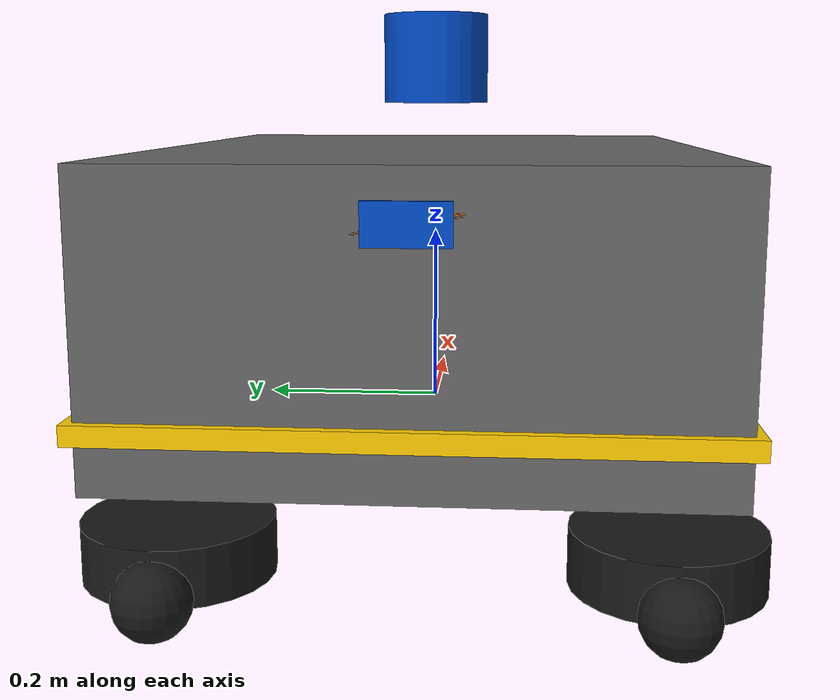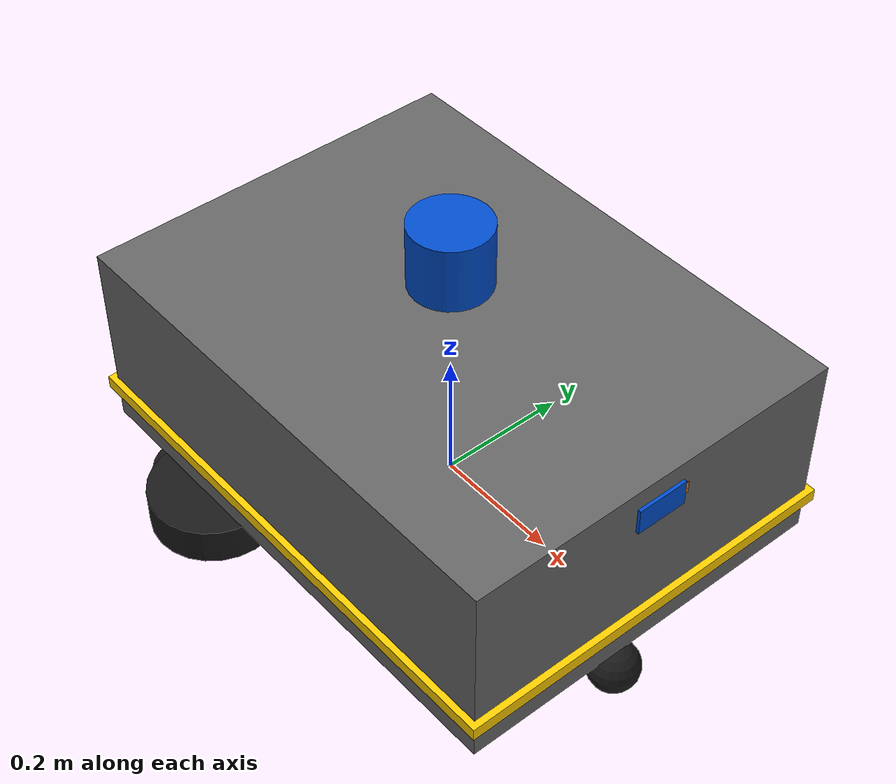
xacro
<?xml version="1.0"?>
<!--
  AGV Differential Drive Model - URDF/Xacro
  Dimensions: 800 x 600 x 300 mm
  Max Speed: 1.5 m/s
  Payload: 500 kg
-->
<robot name="agv" xmlns:xacro="http://www.ros.org/wiki/xacro">

  <!-- Material definitions                         -->
  <material name="agv_body_grey">
    <color rgba="0.4 0.4 0.4 1.0"/>
  </material>
  <material name="agv_accent_orange">
    <color rgba="1.0 0.5 0.0 1.0"/>
  </material>
  <material name="wheel_black">
    <color rgba="0.1 0.1 0.1 1.0"/>
  </material>
  <material name="sensor_blue">
    <color rgba="0.0 0.3 0.8 1.0"/>
  </material>
  <material name="safety_yellow">
    <color rgba="1.0 0.8 0.0 1.0"/>
  </material>

  <!-- Macros                                       -->

  <!-- Drive wheel macro -->
  <xacro:macro name="drive_wheel" params="name prefix x_reflect">
    <joint name="${name}_joint" type="continuous">
      <origin xyz="${x_reflect * 0.25} ${0.25 * (1 if prefix == 'right' else -1)} -0.1" rpy="0 0 0"/>
      <parent link="base_link"/>
      <child link="${name}_link"/>
      <axis xyz="0 1 0"/>
    </joint>
    <link name="${name}_link">
      <inertial>
        <origin xyz="0 0 0" rpy="0 0 0"/>
        <mass value="2.0"/>
        <inertia ixx="0.01" ixy="0.0" ixz="0.0" iyy="0.01" iyz="0.0" izz="0.01"/>
      </inertial>
      <visual>
        <origin xyz="0 0 0" rpy="0 0 0"/>
        <geometry>
          <cylinder radius="0.1" length="0.06"/>
        </geometry>
        <material name="wheel_black"/>
      </visual>
      <collision>
        <origin xyz="0 0 0" rpy="0 0 0"/>
        <geometry>
          <cylinder radius="0.1" length="0.06"/>
        </geometry>
      </collision>
    </link>
  </xacro:macro>

  <!-- Caster wheel macro -->
  <xacro:macro name="caster_wheel" params="name x y">
    <joint name="${name}_joint" type="fixed">
      <origin xyz="${x} ${y} -0.12" rpy="0 0 0"/>
      <parent link="base_link"/>
      <child link="${name}_link"/>
    </joint>
    <link name="${name}_link">
      <inertial>
        <mass value="0.5"/>
        <inertia ixx="0.001" ixy="0" ixz="0" iyy="0.001" iyz="0" izz="0.001"/>
      </inertial>
      <visual>
        <geometry>
          <sphere radius="0.04"/>
        </geometry>
        <material name="wheel_black"/>
      </visual>
      <collision>
        <geometry>
          <sphere radius="0.04"/>
        </geometry>
      </collision>
    </link>
  </xacro:macro>

  <!-- Base link (chassis)                          -->
  <link name="base_link">
    <inertial>
      <origin xyz="0 0 0" rpy="0 0 0"/>
      <mass value="80.0"/>
      <inertia
        ixx="${80.0 * (0.6*0.6 + 0.3*0.3) / 12}"
        ixy="0.0" ixz="0.0"
        iyy="${80.0 * (0.8*0.8 + 0.3*0.3) / 12}"
        iyz="0.0"
        izz="${80.0 * (0.8*0.8 + 0.6*0.6) / 12}"/>
    </inertial>
    <visual>
      <origin xyz="0 0 0.15" rpy="0 0 0"/>
      <geometry>
        <box size="0.8 0.6 0.3"/>
      </geometry>
      <material name="agv_body_grey"/>
    </visual>
    <visual>
      <!-- Orange accent stripe -->
      <origin xyz="0 0 0.25" rpy="0 0 0"/>
      <geometry>
        <box size="0.8 0.1 0.02"/>
      </geometry>
      <material name="agv_accent_orange"/>
    </visual>
    <collision>
      <origin xyz="0 0 0.15" rpy="0 0 0"/>
      <geometry>
        <box size="0.8 0.6 0.3"/>
      </geometry>
    </collision>
  </link>

  <!-- Drive wheels                                 -->
  <xacro:drive_wheel name="left_wheel" prefix="left" x_reflect="-1"/>
  <xacro:drive_wheel name="right_wheel" prefix="right" x_reflect="-1"/>

  <!-- Caster wheels (support)                      -->
  <xacro:caster_wheel name="front_caster" x="0.35" y="0"/>
  <xacro:caster_wheel name="rear_left_caster" x="-0.35" y="-0.25"/>
  <xacro:caster_wheel name="rear_right_caster" x="-0.35" y="0.25"/>

  <!-- Sensors                                      -->

  <!-- 3D LiDAR (top mounted) -->
  <link name="lidar_link">
    <inertial>
      <mass value="1.5"/>
      <inertia ixx="0.005" ixy="0" ixz="0" iyy="0.005" iyz="0" izz="0.005"/>
    </inertial>
    <visual>
      <origin xyz="0 0 0.05" rpy="0 0 0"/>
      <geometry>
        <cylinder radius="0.06" length="0.1"/>
      </geometry>
      <material name="sensor_blue"/>
    </visual>
    <collision>
      <origin xyz="0 0 0.05" rpy="0 0 0"/>
      <geometry>
        <cylinder radius="0.06" length="0.1"/>
      </geometry>
    </collision>
  </link>
  <joint name="lidar_joint" type="fixed">
    <origin xyz="0 0 0.35" rpy="0 0 0"/>
    <parent link="base_link"/>
    <child link="lidar_link"/>
  </joint>

  <!-- Front RGB-D camera -->
  <link name="camera_front_link">
    <inertial>
      <mass value="0.3"/>
      <inertia ixx="0.0005" ixy="0" ixz="0" iyy="0.0005" iyz="0" izz="0.0005"/>
    </inertial>
    <visual>
      <geometry>
        <box size="0.05 0.08 0.04"/>
      </geometry>
      <material name="sensor_blue"/>
    </visual>
  </link>
  <joint name="camera_front_joint" type="fixed">
    <origin xyz="0.38 0 0.25" rpy="0 0 0"/>
    <parent link="base_link"/>
    <child link="camera_front_link"/>
  </joint>

  <!-- Rear RGB-D camera -->
  <link name="camera_rear_link">
    <inertial>
      <mass value="0.3"/>
      <inertia ixx="0.0005" ixy="0" ixz="0" iyy="0.0005" iyz="0" izz="0.0005"/>
    </inertial>
    <visual>
      <geometry>
        <box size="0.05 0.08 0.04"/>
      </geometry>
      <material name="sensor_blue"/>
    </visual>
  </link>
  <joint name="camera_rear_joint" type="fixed">
    <origin xyz="-0.38 0 0.25" rpy="0 3.14159 0"/>
    <parent link="base_link"/>
    <child link="camera_rear_link"/>
  </joint>

  <!-- IMU (center, inside chassis) -->
  <link name="imu_link">
    <inertial>
      <mass value="0.05"/>
      <inertia ixx="0.00001" ixy="0" ixz="0" iyy="0.00001" iyz="0" izz="0.00001"/>
    </inertial>
  </link>
  <joint name="imu_joint" type="fixed">
    <origin xyz="0 0 0.2" rpy="0 0 0"/>
    <parent link="base_link"/>
    <child link="imu_link"/>
  </joint>

  <!-- Safety edge visual (yellow stripe around base) -->
  <link name="safety_edge_link">
    <visual>
      <origin xyz="0 0 0.05" rpy="0 0 0"/>
      <geometry>
        <box size="0.82 0.62 0.02"/>
      </geometry>
      <material name="safety_yellow"/>
    </visual>
  </link>
  <joint name="safety_edge_joint" type="fixed">
    <origin xyz="0 0 0.01" rpy="0 0 0"/>
    <parent link="base_link"/>
    <child link="safety_edge_link"/>
  </joint>

  <!-- Gazebo extensions                            -->
  <gazebo>
    <plugin name="gazebo_ros_diff_drive" filename="libgazebo_ros_diff_drive.so">
      <!-- Wheel configuration -->
      <left_joint>left_wheel_joint</left_joint>
      <right_joint>right_wheel_joint</right_joint>
      <wheel_separation>0.5</wheel_separation>
      <wheel_diameter>0.2</wheel_diameter>
      <max_wheel_torque>20.0</max_wheel_torque>
      <max_wheel_acceleration>5.0</max_wheel_acceleration>

      <!-- Odometry -->
      <odometry_frame>odom</odometry_frame>
      <robot_base_frame>base_link</robot_base_frame>
      <publish_odom>true</publish_odom>
      <publish_odom_tf>true</publish_odom_tf>
      <publish_wheel_tf>false</publish_wheel_tf>

      <!-- Topic configuration -->
      <ros>
        <namespace>/agv_01</namespace>
        <remapping>cmd_vel:=cmd_vel</remapping>
        <remapping>odom:=odom</remapping>
      </ros>

      <!-- Update rate -->
      <update_rate>100</update_rate>
    </plugin>
  </gazebo>

  <!-- LiDAR sensor plugin -->
  <gazebo reference="lidar_link">
    <sensor name="lidar_sensor" type="ray">
      <pose>0 0 0.05 0 0 0</pose>
      <visualize>false</visualize>
      <update_rate>30</update_rate>
      <ray>
        <scan>
          <horizontal>
            <samples>360</samples>
            <resolution>1</resolution>
            <min_angle>-3.14159</min_angle>
            <max_angle>3.14159</max_angle>
          </horizontal>
          <vertical>
            <samples>16</samples>
            <resolution>1</resolution>
            <min_angle>-0.2618</min_angle>
            <max_angle>0.2618</max_angle>
          </vertical>
        </scan>
        <range>
          <min>0.1</min>
          <max>30.0</max>
          <resolution>0.01</resolution>
        </range>
        <noise>
          <type>gaussian</type>
          <mean>0.0</mean>
          <stddev>0.02</stddev>
        </noise>
      </ray>
      <plugin name="gazebo_ros_lidar" filename="libgazebo_ros_ray_sensor.so">
        <ros>
          <namespace>/agv_01</namespace>
          <remapping>~/out:=scan</remapping>
        </ros>
        <output_type>sensor_msgs/LaserScan</output_type>
        <frame_name>lidar_link</frame_name>
      </plugin>
    </sensor>
  </gazebo>

  <!-- IMU sensor plugin -->
  <gazebo reference="imu_link">
    <gravity>true</gravity>
    <sensor name="imu_sensor" type="imu">
      <always_on>true</always_on>
      <update_rate>100</update_rate>
      <visualize>false</visualize>
      <imu>
        <angular_velocity>
          <x>
            <noise type="gaussian">
              <mean>0.0</mean>
              <stddev>0.0005</stddev>
            </noise>
          </x>
          <y>
            <noise type="gaussian">
              <mean>0.0</mean>
              <stddev>0.0005</stddev>
            </noise>
          </y>
          <z>
            <noise type="gaussian">
              <mean>0.0</mean>
              <stddev>0.0005</stddev>
            </noise>
          </z>
        </angular_velocity>
        <linear_acceleration>
          <x>
            <noise type="gaussian">
              <mean>0.0</mean>
              <stddev>0.01</stddev>
            </noise>
          </x>
          <y>
            <noise type="gaussian">
              <mean>0.0</mean>
              <stddev>0.01</stddev>
            </noise>
          </y>
          <z>
            <noise type="gaussian">
              <mean>0.0</mean>
              <stddev>0.01</stddev>
            </noise>
          </z>
        </linear_acceleration>
      </imu>
      <plugin name="gazebo_ros_imu" filename="libgazebo_ros_imu_sensor.so">
        <ros>
          <namespace>/agv_01</namespace>
          <remapping>~/out:=imu</remapping>
        </ros>
      </plugin>
    </sensor>
  </gazebo>

  <!-- Safety bumper/contact sensor -->
  <gazebo reference="safety_edge_link">
    <sensor name="bumper_sensor" type="contact">
      <always_on>true</always_on>
      <update_rate>100</update_rate>
      <contact>
        <collision>base_link</collision>
      </contact>
      <plugin name="gazebo_ros_bumper" filename="libgazebo_ros_bumper.so">
        <ros>
          <namespace>/agv_01</namespace>
          <remapping>~/out:=safety/bumper</remapping>
        </ros>
        <frame_name>base_link</frame_name>
      </plugin>
    </sensor>
  </gazebo>

</robot>
